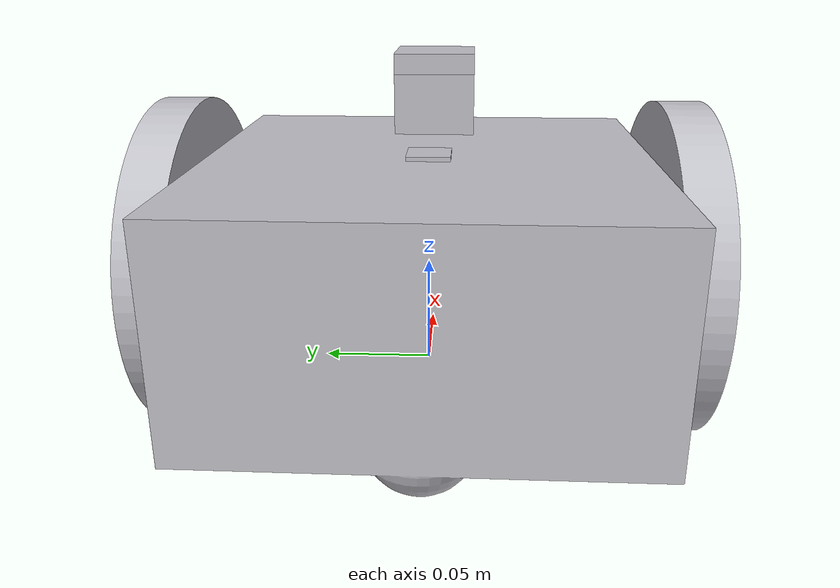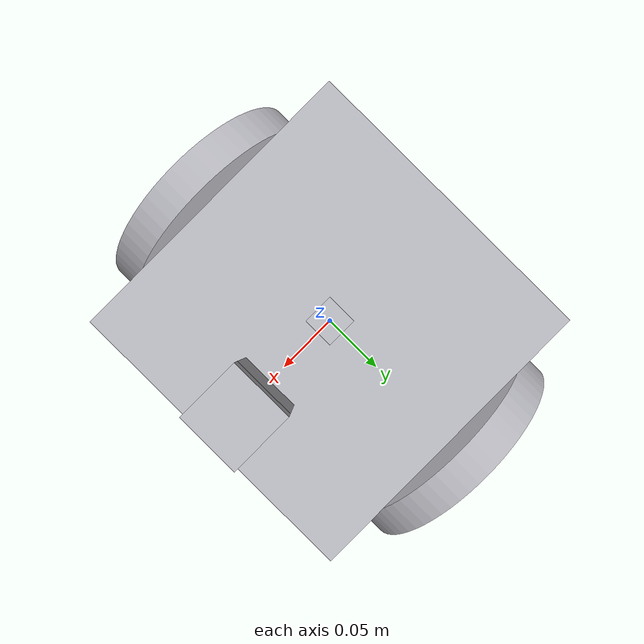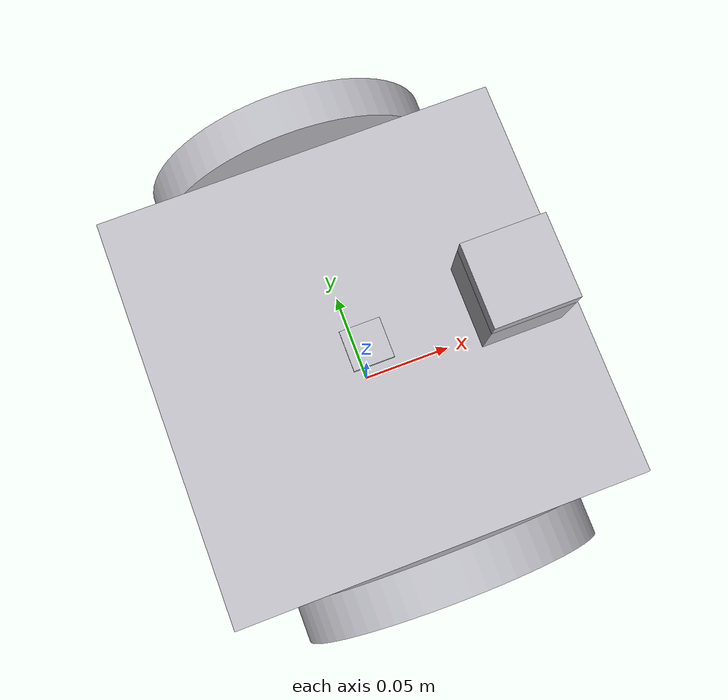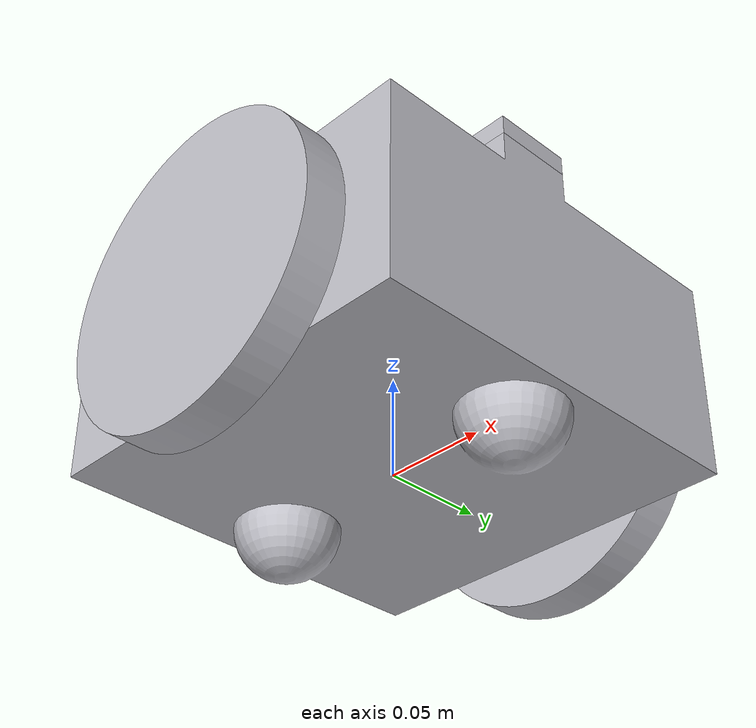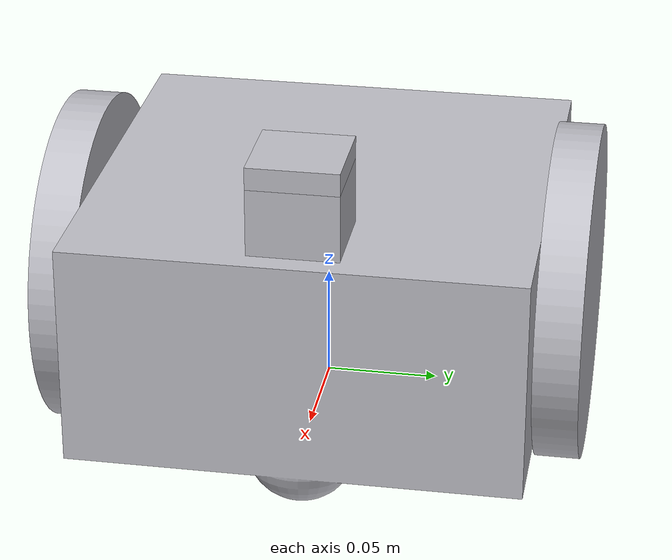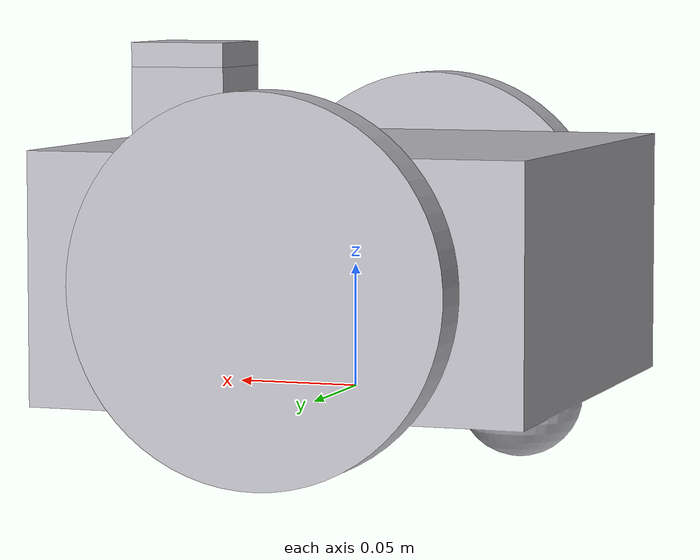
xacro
<?xml version="1.0" ?>
<robot name="final" xmlns:xacro="http://www.ros.org/wiki/xacro">

<xacro:include filename="$(find final_description)/urdf/materials.xacro" />
<xacro:include filename="$(find final_description)/urdf/final.trans" />
<xacro:include filename="$(find final_description)/urdf/final.gazebo" />
<link name="base_link">
  <inertial>
    <origin xyz="0.0008168326161777776 6.238632646573803e-14 0.04981376102999977" rpy="0 0 0"/>
    <mass value="35.375668683768154"/>
    <inertia ixx="0.147238" iyy="0.151995" izz="0.234341" ixy="0.0" iyz="0.0" ixz="-0.001884"/>
  </inertial>
  <visual>
    <origin xyz="0 0 0" rpy="0 0 0"/>
    <geometry>
      <mesh filename="package://final_description/meshes/base_link.stl" scale="0.001 0.001 0.001"/>
    </geometry>
    <material name="silver"/>
  </visual>
  <collision>
    <origin xyz="0 0 0" rpy="0 0 0"/>
    <geometry>
      <mesh filename="package://final_description/meshes/base_link.stl" scale="0.001 0.001 0.001"/>
    </geometry>
  </collision>
</link>

<link name="left_wheel_1">
  <inertial>
    <origin xyz="0.0 0.009999999999999995 -1.3877787807814457e-17" rpy="0 0 0"/>
    <mass value="2.7744190122014865"/>
    <inertia ixx="0.003994" iyy="0.007803" izz="0.003994" ixy="0.0" iyz="-0.0" ixz="0.0"/>
  </inertial>
  <visual>
    <origin xyz="-0.0 -0.1 -0.05" rpy="0 0 0"/>
    <geometry>
      <mesh filename="package://final_description/meshes/left_wheel_1.stl" scale="0.001 0.001 0.001"/>
    </geometry>
    <material name="silver"/>
  </visual>
  <collision>
    <origin xyz="-0.0 -0.1 -0.05" rpy="0 0 0"/>
    <geometry>
      <mesh filename="package://final_description/meshes/left_wheel_1.stl" scale="0.001 0.001 0.001"/>
    </geometry>
  </collision>
</link>

<link name="right_wheel_1">
  <inertial>
    <origin xyz="0.0 -0.009999999999999995 -1.3877787807814457e-17" rpy="0 0 0"/>
    <mass value="2.7744190122014865"/>
    <inertia ixx="0.003994" iyy="0.007803" izz="0.003994" ixy="-0.0" iyz="0.0" ixz="0.0"/>
  </inertial>
  <visual>
    <origin xyz="-0.0 0.1 -0.05" rpy="0 0 0"/>
    <geometry>
      <mesh filename="package://final_description/meshes/right_wheel_1.stl" scale="0.001 0.001 0.001"/>
    </geometry>
    <material name="silver"/>
  </visual>
  <collision>
    <origin xyz="-0.0 0.1 -0.05" rpy="0 0 0"/>
    <geometry>
      <mesh filename="package://final_description/meshes/right_wheel_1.stl" scale="0.001 0.001 0.001"/>
    </geometry>
  </collision>
</link>

<link name="imu_link_1">
  <inertial>
    <origin xyz="0.0 0.0 0.0010000000000000148" rpy="0 0 0"/>
    <mass value="0.0062799999999999774"/>
    <inertia ixx="0.0" iyy="0.0" izz="0.0" ixy="0.0" iyz="-0.0" ixz="-0.0"/>
  </inertial>
  <visual>
    <origin xyz="-0.0 -0.0 -0.1" rpy="0 0 0"/>
    <geometry>
      <mesh filename="package://final_description/meshes/imu_link_1.stl" scale="0.001 0.001 0.001"/>
    </geometry>
    <material name="silver"/>
  </visual>
  <collision>
    <origin xyz="-0.0 -0.0 -0.1" rpy="0 0 0"/>
    <geometry>
      <mesh filename="package://final_description/meshes/imu_link_1.stl" scale="0.001 0.001 0.001"/>
    </geometry>
  </collision>
</link>

<link name="lidar_1">
  <inertial>
    <origin xyz="0.0 0.0 0.0050000000000000044" rpy="0 0 0"/>
    <mass value="0.1256"/>
    <inertia ixx="1.8e-05" iyy="1.8e-05" izz="3.3e-05" ixy="0.0" iyz="0.0" ixz="0.0"/>
  </inertial>
  <visual>
    <origin xyz="-0.07 -0.0 -0.13" rpy="0 0 0"/>
    <geometry>
      <mesh filename="package://final_description/meshes/lidar_1.stl" scale="0.001 0.001 0.001"/>
    </geometry>
    <material name="silver"/>
  </visual>
  <collision>
    <origin xyz="-0.07 -0.0 -0.13" rpy="0 0 0"/>
    <geometry>
      <mesh filename="package://final_description/meshes/lidar_1.stl" scale="0.001 0.001 0.001"/>
    </geometry>
  </collision>
</link>

<joint name="Rev1" type="continuous">
  <origin xyz="0.0 0.1 0.05" rpy="0 0 0"/>
  <parent link="base_link"/>
  <child link="left_wheel_1"/>
  <axis xyz="0.0 1.0 0.0"/>
</joint>

<joint name="Rev2" type="continuous">
  <origin xyz="0.0 -0.1 0.05" rpy="0 0 0"/>
  <parent link="base_link"/>
  <child link="right_wheel_1"/>
  <axis xyz="0.0 1.0 0.0"/>
</joint>

<joint name="Rigid4" type="fixed">
  <origin xyz="0.0 0.0 0.1" rpy="0 0 0"/>
  <parent link="base_link"/>
  <child link="imu_link_1"/>
</joint>

<joint name="Rigid5" type="fixed">
  <origin xyz="0.07 0.0 0.13" rpy="0 0 0"/>
  <parent link="base_link"/>
  <child link="lidar_1"/>
</joint>

</robot>

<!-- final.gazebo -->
<robot name="final" xmlns:xacro="http://www.ros.org/wiki/xacro" >

<xacro:property name="body_color" value="Gazebo/Silver" />

<gazebo>
  <plugin name="control" filename="libgazebo_ros_control.so"/>
</gazebo>
<gazebo reference="base_link">
  <material>${body_color}</material>
  <mu1>0.1</mu1>
  <mu2>0.1</mu2>
  <selfCollide>true</selfCollide>
  <gravity>true</gravity>
</gazebo>

<gazebo reference="left_wheel_1">
  <material>${body_color}</material>
  <mu1>1500</mu1>
  <mu2>1500</mu2>
  <selfCollide>true</selfCollide>
</gazebo>

<gazebo reference="right_wheel_1">
  <material>${body_color}</material>
  <mu1>1500</mu1>
  <mu2>1500</mu2>
  <selfCollide>true</selfCollide>
</gazebo>

<gazebo reference="imu_link_1">
  <material>${body_color}</material>
  <mu1>0.2</mu1>
  <mu2>0.2</mu2>
  <selfCollide>true</selfCollide>
  <gravity>true</gravity>
    <sensor name="imu_sensor" type="imu">
      <always_on>true</always_on>
      <update_rate>100</update_rate>
      <visualize>true</visualize>
      <topic>__default_topic__</topic>
      <plugin filename="libgazebo_ros_imu_sensor.so" name="imu_plugin">
        <topicName>/imu</topicName>
        <bodyName>imu_link_1</bodyName>
        <updateRateHZ>10.0</updateRateHZ>
        <gaussianNoise>0.0</gaussianNoise>
        <xyzOffset>0 0 0</xyzOffset>
        <rpyOffset>0 0 0</rpyOffset>
        <frameName>imu_link_1</frameName>
        <initialOrientationAsReference>false</initialOrientationAsReference>
      </plugin>
      <pose>0 0 0 0 0 0</pose>
    </sensor>
</gazebo>

<gazebo reference="lidar_1">
<material>${body_color}</material>
  <mu1>0.2</mu1>
  <mu2>0.2</mu2>
  <selfCollide>true</selfCollide>
    <sensor type="ray" name="head_hokuyo_sensor">
      <pose>0 0 0 0 0 0</pose>
      <visualize>false</visualize>
      <update_rate>40</update_rate>
      <ray>
        <scan>
          <horizontal>
            <samples>720</samples>
            <resolution>1</resolution>
            <min_angle>-3.14159</min_angle>
            <max_angle>3.14159</max_angle>
          </horizontal>
        </scan>
        <range>
          <min>0.1</min>
          <max>12.0</max>
          <resolution>0.01</resolution>
        </range>
        <noise>
          <type>gaussian</type>
          <mean>0.0</mean>
          <stddev>0.01</stddev>
        </noise>
      </ray>
      <plugin name="gazebo_ros_head_hokuyo_controller" filename="libgazebo_ros_laser.so">
        <topicName>/scan</topicName>
        <frameName>lidar_1</frameName>
      </plugin>
    </sensor>
  </gazebo>

  <gazebo>
  <plugin name="differential_drive_controller" filename="libgazebo_ros_diff_drive.so">

    <!-- Plugin update rate in Hz -->
    <updateRate>100</updateRate>

    <!-- Name of left joint, defaults to `left_joint` -->
    <leftJoint>Rev1</leftJoint>

    <!-- Name of right joint, defaults to `right_joint` -->
    <rightJoint>Rev2</rightJoint>

    <!-- The distance from the center of one wheel to the other, in meters, defaults to 0.34 m -->
    <wheelSeparation>0.2</wheelSeparation>

    <!-- Diameter of the wheels, in meters, defaults to 0.15 m -->
    <wheelDiameter>0.15</wheelDiameter>

    <!-- Wheel acceleration, in rad/s^2, defaults to 0.0 rad/s^2 -->
    <wheelAcceleration>1.0</wheelAcceleration>

    <!-- Maximum torque which the wheels can produce, in Nm, defaults to 5 Nm -->
    <wheelTorque>50</wheelTorque>

    <!-- Topic to receive geometry_msgs/Twist message commands, defaults to `cmd_vel` -->
    <commandTopic>cmd_vel</commandTopic>

    <!-- Topic to publish nav_msgs/Odometry messages, defaults to `odom` -->
    <odometryTopic>odom</odometryTopic>

    <!-- Odometry frame, defaults to `odom` -->
    <odometryFrame>odom</odometryFrame>

    <!-- Robot frame to calculate odometry from, defaults to `base_footprint` -->
    <robotBaseFrame>base_link</robotBaseFrame>

    <!-- Odometry source, 0 for ENCODER, 1 for WORLD, defaults to WORLD -->
    <odometrySource>1</odometrySource>

    <!-- Set to true to publish transforms for the wheel links, defaults to false -->
    <publishWheelTF>true</publishWheelTF>

    <!-- Set to true to publish transforms for the odometry, defaults to true -->
    <publishOdom>true</publishOdom>

    <!-- Set to true to publish sensor_msgs/JointState on /joint_states for the wheel joints, defaults to false -->
    <publishWheelJointState>true</publishWheelJointState>

    <!-- Set to true to swap right and left wheels, defaults to true -->
    <legacyMode>false</legacyMode>
  </plugin>
</gazebo>

</robot>
